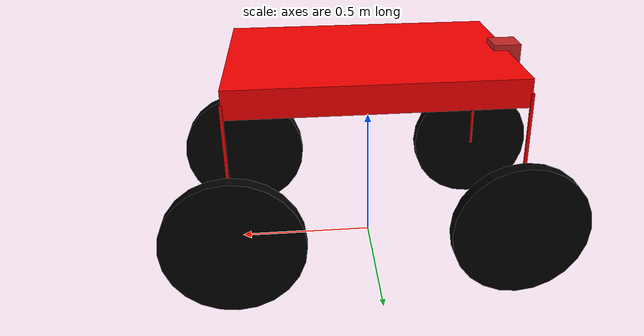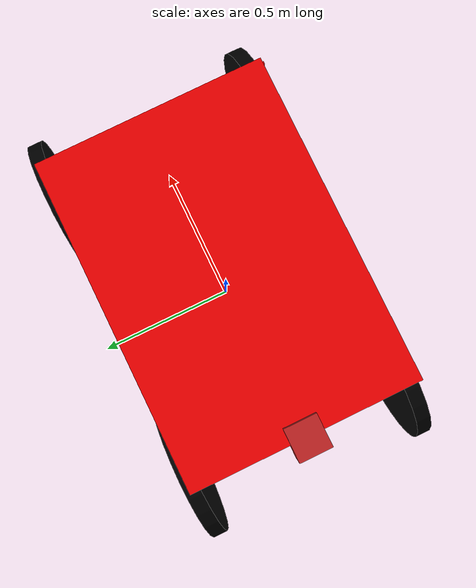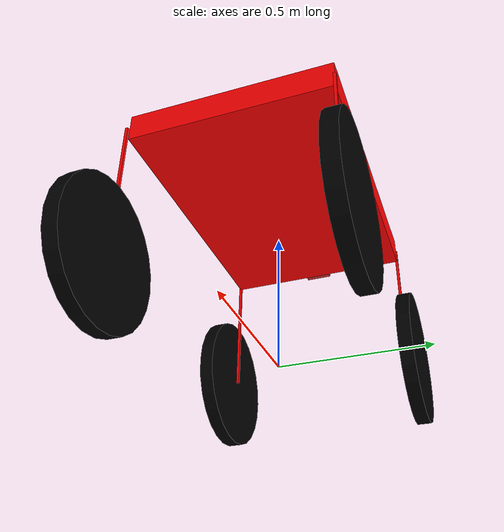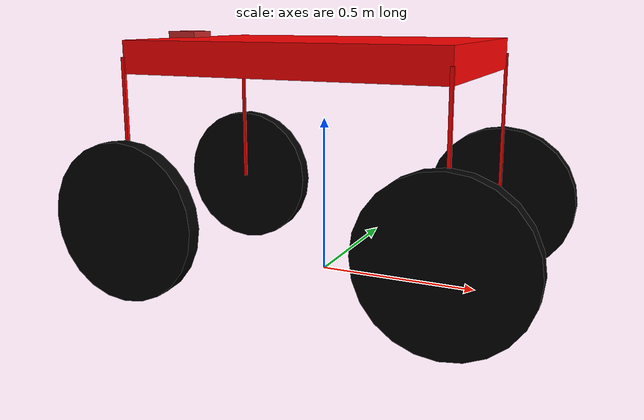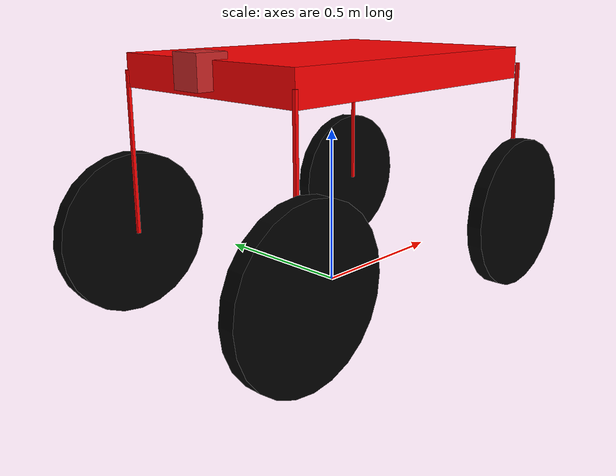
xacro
<?xml version="1.0"?>
<robot xmlns:xacro="http://www.ros.org/wiki/xacro" name="mpav">
<xacro:include filename="$(find krishaka)/urdf/new_depth_camera.gazebo.xacro"/>

<link name="base_footprint"/>

<link name="base_link">
    <inertial>
        <origin xyz="0.0 0.0 0.0" rpy="0.0 0.0 0.0"/>
        <mass value="1.0"/>
        <inertia ixx="0.3" ixy="0.0" ixz="0.0"
                 iyy="0.3" iyz="0.0"
                 izz="0.3"/>
    </inertial>
    <visual name="">
        <origin xyz="0.0 0.0 0.0" rpy="0.0 0.0 0.0"/>
        <geometry>
            <box size="1 0.7 0.1"/>
        </geometry>
        <material name="">
            <color rgba="1.0 0.0 0.0 1.0"/>
            <texture filename=""/>
        </material>
    </visual>
    <collision>
        <origin xyz="0.0 0.0 0.0" rpy="0.0 0.0 0.0"/>
        <geometry>
            <box size="1 0.7 0.1"/>
        </geometry>
    </collision>
</link>

<joint name="base_joint" type="fixed">
    <origin xyz="0.0 0.0 0.7" rpy="0.0 0.0 0.0"/>
    <parent link="base_footprint"/>
    <child link="base_link"/>
    <axis xyz="0.0 0.0 0.0"/>
</joint>

<gazebo reference="base_link">
    <turnGravityOff>false</turnGravityOff>
</gazebo>

<link name="front_left_link">
    <inertial>
        <origin xyz="0.0 0.0 0.0" rpy="0.0 0.0 0.0"/>
        <mass value="1"/>
        <inertia ixx="0.3" ixy="0.0" ixz="0.0"
                 iyy="0.3" iyz="0.0"
                 izz="0.3"/>
    </inertial>
    <visual name="">
        <origin xyz="0.0 0.0 0.0" rpy="0.0 0.0 0.0"/>
        <geometry>
            <box size="0.01 0.01 0.5"/>
        </geometry>
        <material name="">
            <color rgba="1.0 0.0 0.0 1.0"/>
            <texture filename=""/>
        </material>
    </visual>
    <collision>
        <origin xyz="0.0 0.0 0.0" rpy="0.0 0.0 0.0"/>
        <geometry>
            <box size="0.01 0.01 0.5"/>
        </geometry>
    </collision>
</link>

<joint name="side_joint_1" type="fixed">
    <origin xyz="0.5 0.35 -0.25" rpy="0.0 0.0 0.0"/>
    <parent link="base_link"/>
    <child link="front_left_link"/>
    <axis xyz="0.0 0.0 0.0"/>
</joint>
<gazebo reference="front_left_link">
    <turnGravityOff>false</turnGravityOff>
</gazebo>

<link name="rear_left_link">
    <inertial>
        <origin xyz="0.0 0.0 0.0" rpy="0.0 0.0 0.0"/>
        <mass value="1"/>
        <inertia ixx="0.3" ixy="0.0" ixz="0.0"
                 iyy="0.3" iyz="0.0"
                 izz="0.3"/>
    </inertial>
    <visual name="">
        <origin xyz="0.0 0.0 0.0" rpy="0.0 0.0 0.0"/>
        <geometry>
            <box size="0.01 0.01 0.5"/>
        </geometry>
        <material name="">
            <color rgba="1.0 0.0 0.0 1.0"/>
            <texture filename=""/>
        </material>
    </visual>
    <collision>
        <origin xyz="0.0 0.0 0.0" rpy="0.0 0.0 0.0"/>
        <geometry>
            <box size="0.01 0.01 0.5"/>
        </geometry>
    </collision>
</link>

<joint name="side_joint_2" type="fixed">
    <origin xyz="-0.5 0.35 -0.25" rpy="0.0 0.0 0.0"/>
    <parent link="base_link"/>
    <child link="rear_left_link"/>
    <axis xyz="0.0 0.0 0.0"/>
</joint>
<gazebo reference="rear_left_link">
    <turnGravityOff>false</turnGravityOff>
</gazebo>

<link name="rear_right_link">
    <inertial>
        <origin xyz="0.0 0.0 0.0" rpy="0.0 0.0 0.0"/>
        <mass value="1"/>
        <inertia ixx="0.3" ixy="0.0" ixz="0.0"
                 iyy="0.3" iyz="0.0"
                 izz="0.3"/>
    </inertial>
    <visual name="">
        <origin xyz="0.0 0.0 0.0" rpy="0.0 0.0 0.0"/>
        <geometry>
            <box size="0.01 0.01 0.5"/>
        </geometry>
        <material name="">
            <color rgba="1.0 0.0 0.0 1.0"/>
            <texture filename=""/>
        </material>
    </visual>
    <collision>
        <origin xyz="0.0 0.0 0.0" rpy="0.0 0.0 0.0"/>
        <geometry>
            <box size="0.01 0.01 0.5"/>
        </geometry>
    </collision>
</link>

<joint name="side_joint_3" type="fixed">
    <origin xyz="-0.5 -0.35 -0.25" rpy="0.0 0.0 0.0"/>
    <parent link="base_link"/>
    <child link="rear_right_link"/>
    <axis xyz="0.0 0.0 0.0"/>
</joint>
<gazebo reference="rear_right_link">
    <turnGravityOff>false</turnGravityOff>
</gazebo>

<link name="rear_front_link">
    <inertial>
        <origin xyz="0.0 0.0 0.0" rpy="0.0 0.0 0.0"/>
        <mass value="1"/>
        <inertia ixx="0.3" ixy="0.0" ixz="0.0"
                 iyy="0.3" iyz="0.0"
                 izz="0.3"/>
    </inertial>
    <visual name="">
        <origin xyz="0.0 0.0 0.0" rpy="0.0 0.0 0.0"/>
        <geometry>
            <box size="0.01 0.01 0.5"/>
        </geometry>
        <material name="">
            <color rgba="1.0 0.0 0.0 1.0"/>
            <texture filename=""/>
        </material>
    </visual>
    <collision>
        <origin xyz="0.0 0.0 0.0" rpy="0.0 0.0 0.0"/>
        <geometry>
            <box size="0.01 0.01 0.5"/>
        </geometry>
    </collision>
</link>

<joint name="side_joint_4" type="fixed">
    <origin xyz="0.5 -0.36 -0.25" rpy="0.0 0.0 0.0"/>
    <parent link="base_link"/>
    <child link="rear_front_link"/>
    <axis xyz="0.0 0.0 0.0"/>
</joint>
<gazebo reference="rear_front_link">
    <turnGravityOff>false</turnGravityOff>
</gazebo>

<!-- All Wheel links and joints -->

<xacro:macro name="wheel" params="name x y">

    <link name="wheel_${name}_link">
        <inertial>
            <origin xyz="0.0 0.0 0.0" rpy="0.0 0.0 0.0"/>
            <mass value="0.5"/>
            <inertia ixx="0.0" ixy="0.0" ixz="0.0" iyy="0.0" iyz="0.0" izz="0.0"/>
        </inertial>
        <visual name="">
            <origin xyz="0.0 0.0 0.0" rpy="0.0 0.0 0.0"/>
            <geometry>
                <cylinder radius="0.25" length="0.05"/>
            </geometry>
            <material name="black">
                <color rgba=".0 .0 0.0 1.0"/>
            </material>
        </visual>
        <collision>
            <origin xyz="0.0 0.0 0.0" rpy="0.0 0.0 0.0"/>
            <geometry>
                <cylinder radius="0.25" length="0.05"/>
            </geometry>
        </collision>
    </link>

    <joint name="wheel_${name}_joint" type="continuous">
        <origin xyz="${x} ${y} -0.50" rpy="1.57 0.0 0.0"/>
        <parent link="base_link"/>
        <child link="wheel_${name}_link"/>
        <axis xyz=".0 0.0 1.0"/>
        <limit effort= "100" velocity="100"/>
        <dynamics damping="0.0" friction="0.0"/>
    </joint>

    <gazebo reference ="wheel_${name}">
    <mu1 value="200.0"/>
    <mu2 value="100.0"/>
    <kp value="10000000.0"/>
    <kd value= "1.0"/>
    <material>Gazebo/Black</material>
  </gazebo>

</xacro:macro>

<xacro:wheel name="front_left"  x="0.50" y =" 0.38"/>
<xacro:wheel name="rear_left" x="-0.50" y =" 0.38"/>
<xacro:wheel name="rear_right"  x="-0.50" y =" -0.38"/>
<xacro:wheel name="front_right"   x="0.50" y =" -0.38"/>

<!--Plugins-->
  <gazebo>
  <plugin name="gazebo_ros_control" filename="libgazebo_ros_control.so">
    <robotNamespace>/your_robot_name</robotNamespace>
    <!-- Other controller parameters -->
  </plugin>

  <plugin name="differential_drive_controller" filename="libgazebo_ros_diff_drive.so">
    <leftJoint>wheel_rear_left_joint</leftJoint>
    <rightJoint>wheel_rear_right_joint</rightJoint>
    <wheelSeparation>0.5</wheelSeparation>
    <wheelDiameter>0.4</wheelDiameter>
    <publishWheelJointState>true</publishWheelJointState>
  </plugin>

  <plugin name="gazebo_ros_pose" filename="libgazebo_ros_pose.so">
        <bodyName>base_link</bodyName>
        <topicName>robot_pose</topicName>
        <updateRate>50</updateRate>
    </plugin>

  </gazebo>

</robot>

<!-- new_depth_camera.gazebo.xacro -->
<robot>

<link name="camera_link">
    <collision>
      <origin xyz="0 0 0" rpy="0 0 0"/>
      <geometry>
    <box size="0.1 0.1 0.1"/>
      </geometry>
    </collision>

    <visual>
      <origin xyz="0 0 0" rpy="0 0 0"/>
      <geometry>
    <box size="0.1 0.1 0.1"/>
      </geometry>
      <material name="red"/>
    </visual>

    <inertial>
      <mass value="1e-5" />
      <origin xyz="0 0 0" rpy="0 0 0"/>
      <inertia ixx="1e-6" ixy="0" ixz="0" iyy="1e-6" iyz="0" izz="1e-6" />
    </inertial>
  </link>

    <joint name="camera_joint" type="fixed">
      <axis xyz="0 1 0" />
      <origin xyz="-0.5 0.0 0.02" rpy="-0 0 3.14"/>
      <parent link="base_link"/>
      <child link="camera_link"/>
    </joint>

    <gazebo reference="camera_link">
    <sensor name="depth_camera" type="depth">
    <update_rate>20</update_rate>
    <camera>
      <horizontal_fov>1.047198</horizontal_fov>
      <image>
        <width>640</width>
        <height>480</height>
        <format>R8G8B8</format>
      </image>
      <clip>
        <near>0.05</near>
        <far>10</far>
      </clip>
    </camera>
    <plugin name="depth_camera_controller" filename="libgazebo_ros_openni_kinect.so">
      <baseline>0.2</baseline>
      <alwaysOn>true</alwaysOn>
      <updateRate>1.0</updateRate>
      <cameraName>depth_camera_ir</cameraName>
      <imageTopicName>/depth_camera/color/image_raw</imageTopicName>
      <cameraInfoTopicName>/depth_camera/color/camera_info</cameraInfoTopicName>
      <depthImageTopicName>/depth_camera/depth/image_raw</depthImageTopicName>
      <depthImageInfoTopicName>/depth_camera/depth/camera_info</depthImageInfoTopicName>
      <pointCloudTopicName>/depth_camera/depth/points</pointCloudTopicName>
      <frameName>camera_link</frameName>
      <pointCloudCutoff>0.5</pointCloudCutoff>
      <pointCloudCutoffMax>3.0</pointCloudCutoffMax>
      <distortionK1>0.00000001</distortionK1>
      <distortionK2>0.00000001</distortionK2>
      <distortionK3>0.00000001</distortionK3>
      <distortionT1>0.00000001</distortionT1>
      <distortionT2>0.00000001</distortionT2>
      <CxPrime>0</CxPrime>
      <Cx>0</Cx>
      <Cy>0</Cy>
      <focalLength>0</focalLength>
      <hackBaseline>0</hackBaseline>
    </plugin>
    </sensor>
   </gazebo>

</robot>
